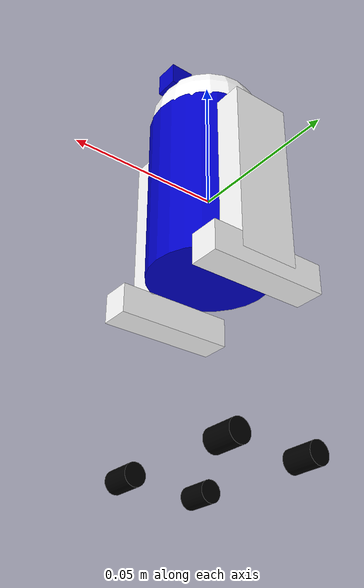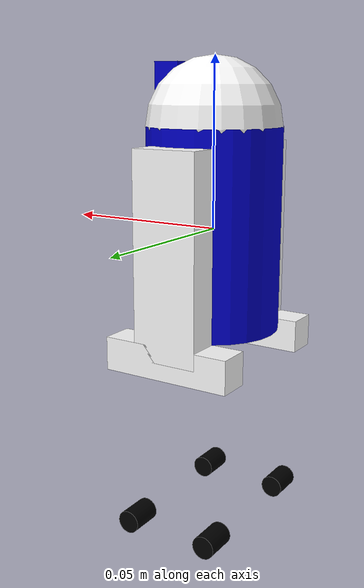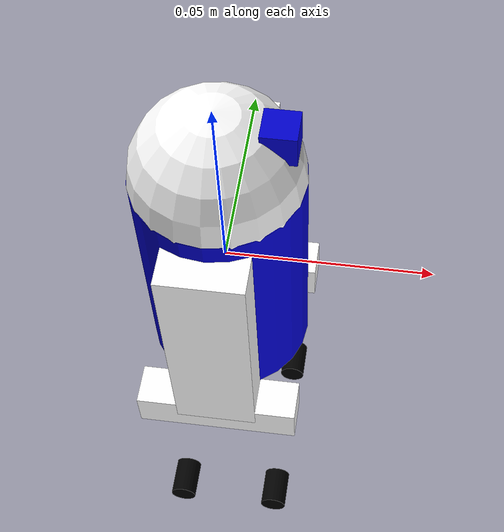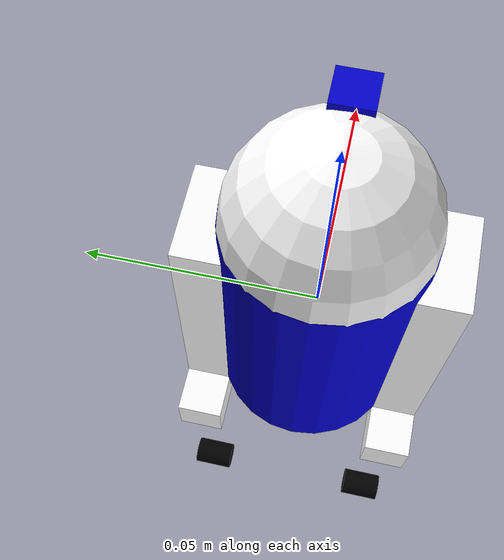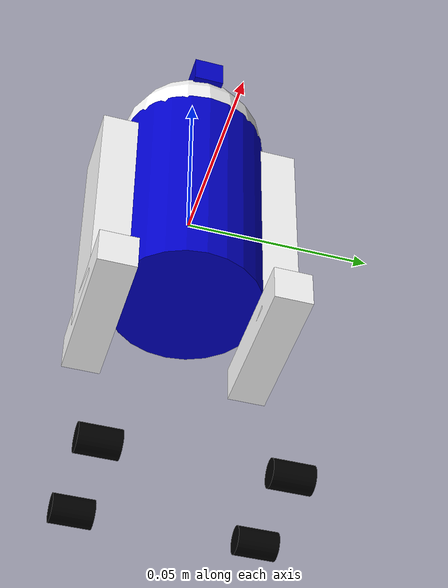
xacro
<?xml version="1.0"?>
<robot name="minir2d2" xmlns:xacro="http://ros.org/wiki/xacro">

  <xacro:property name="width" value=".02" />
  <xacro:property name="leglen" value=".06" />
  <xacro:property name="polelen" value=".02" />
  <xacro:property name="bodylen" value=".06" />
  <xacro:property name="baselen" value=".04" />
  <xacro:property name="wheeldiam" value=".007" />
  <xacro:property name="pi" value="3.1415" />

  <material name="blue">
    <color rgba="0 0 .8 1"/>
  </material>

  <material name="black">
    <color rgba="0 0 0 1"/>
  </material>

  <material name="white">
    <color rgba="1 1 1 1"/>
  </material>

  <xacro:macro name="default_inertial" params="mass">
    <inertial>
      <mass value="${mass}" />
      <inertia ixx="1.0" ixy="0.0" ixz="0.0" iyy="1.0" iyz="0.0" izz="1.0" />
    </inertial>
  </xacro:macro>

  <link name="base_link">
    <visual>
      <geometry>
        <cylinder radius="${width}" length="${bodylen}"/>
      </geometry>
      <material name="blue"/>
    </visual>
    <collision>
      <geometry>
        <cylinder radius="${width}" length="${bodylen}"/>
      </geometry>
    </collision>
    <xacro:default_inertial mass="10"/>
  </link>

  <xacro:macro name="wheel" params="prefix suffix reflect">

    <link name="${prefix}_${suffix}_wheel">
      <visual>
        <origin xyz="0 0 0" rpy="${pi/2} 0 0" />
        <geometry>
          <cylinder radius="${wheeldiam/2}" length="0.01"/>
        </geometry>
        <material name="black"/>
        <origin xyz="0 0 0" rpy="0 0 0" />
      </visual>
      <collision>
        <origin xyz="0 0 0" rpy="${pi/2} 0 0" />
        <geometry>
          <cylinder radius="${wheeldiam/2}" length="0.01"/>
        </geometry>
        <origin xyz="0 0 0" rpy="0 0 0" />
      </collision>
      <xacro:default_inertial mass="1"/>
    </link>
    <joint name="${prefix}_${suffix}_wheel_joint" type="continuous">
      <axis xyz="0 .1 0" rpy="0 0 0" />
      <parent link="${prefix}_base"/>
      <child link="${prefix}_${suffix}_wheel"/>
      <origin xyz="${baselen*reflect/3} 0 -${wheeldiam/2+.05}" rpy="0 0 0"/>
    </joint>

    <!-- This block provides the simulator (Gazebo) with information on a few additional
    physical properties. See http://gazebosim.org/tutorials/?tut=ros_urdf for more-->
    <gazebo reference="${prefix}_${suffix}_wheel">
      <mu1 value="200.0"/>
      <mu2 value="100.0"/>
      <kp value="10000000.0" />
      <kd value="1.0" />
      <material>Gazebo/Grey</material>
    </gazebo>

    <!-- This block connects the wheel joint to an actuator (motor), which informs both
    simulation and visualization of the robot -->
    <transmission name="${prefix}_${suffix}_wheel_trans" type="SimpleTransmission">
      <type>transmission_interface/SimpleTransmission</type>
      <actuator name="${prefix}_${suffix}_wheel_motor">
        <mechanicalReduction>1</mechanicalReduction>
      </actuator>
      <joint name="${prefix}_${suffix}_wheel_joint">
        <hardwareInterface>VelocityJointInterface</hardwareInterface>
      </joint>
    </transmission>

  </xacro:macro>

  <xacro:macro name="leg" params="prefix reflect">
    <link name="${prefix}_leg">
      <visual>
        <geometry>
          <box size="${leglen} .01 .02"/>
        </geometry>
        <origin xyz="0 0 -${leglen/2}" rpy="0 ${pi/2} 0"/>
        <material name="white"/>
      </visual>
      <collision>
        <geometry>
          <box size="${leglen} .01 .02"/>
        </geometry>
        <origin xyz="0 0 -${leglen/2}" rpy="0 ${pi/2} 0"/>
      </collision>
      <xacro:default_inertial mass="10"/>
    </link>

    <joint name="base_to_${prefix}_leg" type="fixed">
      <parent link="base_link"/>
      <child link="${prefix}_leg"/>
      <origin xyz="0 ${reflect*(width+.002)} .025" />
    </joint>

    <link name="${prefix}_base">
      <visual>
        <geometry>
          <box size="${baselen} .01 .01"/>
        </geometry>
        <material name="white"/>
      </visual>
      <collision>
        <geometry>
          <box size="${baselen} .01 .01"/>
        </geometry>
      </collision>
      <xacro:default_inertial mass="10"/>
    </link>

    <joint name="${prefix}_base_joint" type="fixed">
      <parent link="${prefix}_leg"/>
      <child link="${prefix}_base"/>
      <origin xyz="0 0 ${-leglen}" />
    </joint>
    <xacro:wheel prefix="${prefix}" suffix="front" reflect="1"/>
    <xacro:wheel prefix="${prefix}" suffix="back" reflect="-1"/>
  </xacro:macro>
  <xacro:leg prefix="right" reflect="-1" />
  <xacro:leg prefix="left" reflect="1" />

  <link name="head">
    <visual>
      <geometry>
        <sphere radius="${width}"/>
      </geometry>
      <material name="white"/>
    </visual>
    <collision>
      <geometry>
        <sphere radius="${width}"/>
      </geometry>
    </collision>
    <xacro:default_inertial mass="2"/>
  </link>

  <joint name="head_swivel" type="continuous">
    <parent link="base_link"/>
    <child link="head"/>
    <axis xyz="0 0 1"/>
    <origin xyz="0 0 ${bodylen/2}"/>
    <limit effort="30" velocity="1.0"/>
    <dynamics damping="0.0" friction="0.0"/>
  </joint>

  <!-- This block connects the head_swivel joint to an actuator (motor), which informs both
  simulation and visualization of the robot -->
  <transmission name="head_swivel_trans" type="SimpleTransmission">
    <type>transmission_interface/SimpleTransmission</type>
    <actuator name="$head_swivel_motor">
      <mechanicalReduction>1</mechanicalReduction>
    </actuator>
    <joint name="head_swivel">
      <hardwareInterface>PositionJointInterface</hardwareInterface>
    </joint>
  </transmission>

  <link name="box">
    <visual>
      <geometry>
        <box size=".008 .008 .008"/>
      </geometry>
      <material name="blue"/>
      <origin xyz="-0.04 0 0"/>
    </visual>
    <collision>
      <geometry>
        <box size=".008 .008 .008"/>
      </geometry>
    </collision>
    <xacro:default_inertial mass="1"/>
  </link>

  <joint name="tobox" type="fixed">
    <parent link="head"/>
    <child link="box"/>
    <origin xyz="${.707*width+0.04} 0 ${.707*width}"/>
  </joint>

  <!-- Gazebo plugin for ROS Control -->
  <gazebo>
    <plugin name="gazebo_ros_control" filename="libgazebo_ros_control.so">
      <robotNamespace>/</robotNamespace>
    </plugin>
  </gazebo>

</robot>
